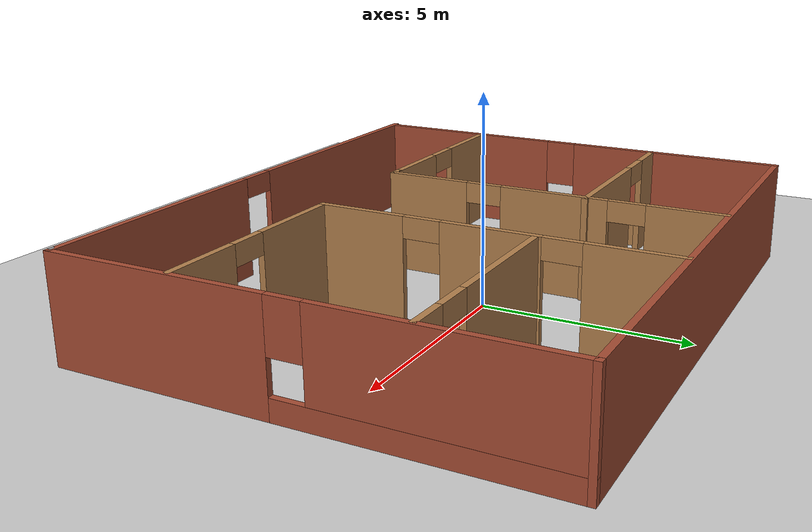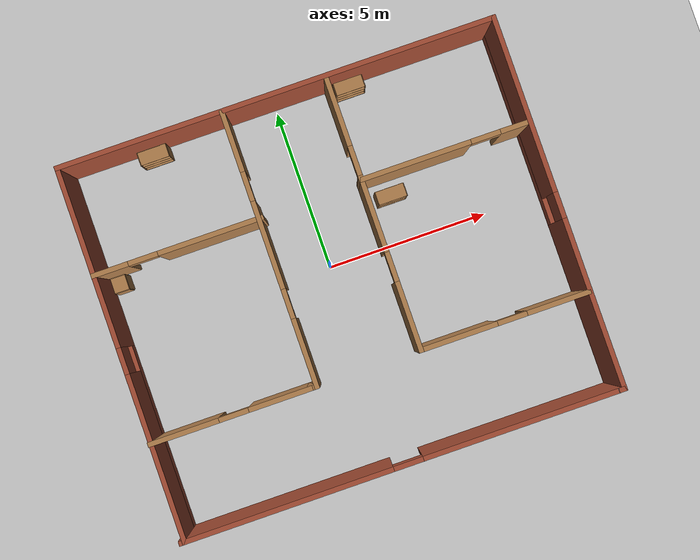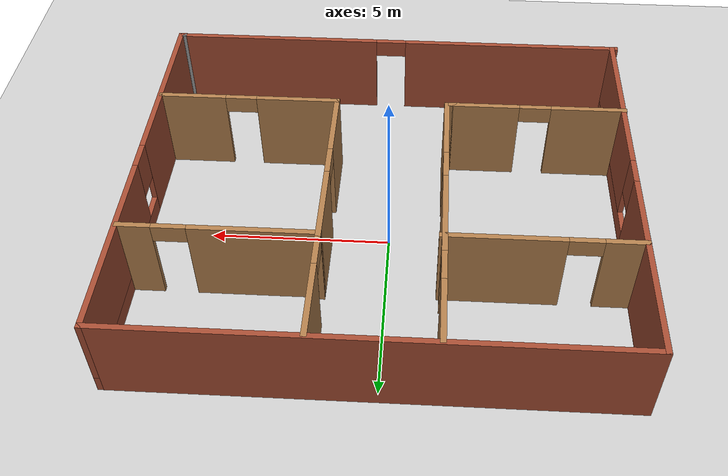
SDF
<sdf version="1.7">
 <world name="default">
  <light name="sun" type="directional">
   <pose>0 0 10 0 -0 0</pose>
   <diffuse>0.8 0.8 0.8 1</diffuse>
   <specular>0.2 0.2 0.2 1</specular>
   <attenuation>
    <range>1000</range>
    <constant>0.9</constant>
    <linear>0.01</linear>
    <quadratic>0.001</quadratic>
   </attenuation>
   <direction>-0.5 0.1 -0.9</direction>
   <spot><inner_angle>0</inner_angle><outer_angle>0</outer_angle><falloff>0</falloff></spot>
  </light>
  <model name="ground_plane">
   <static>1</static>
   <link name="link">
    <collision name="collision">
     <geometry><plane><normal>0 0 1</normal><size>100 100</size></plane></geometry>
     <surface>
      <contact><collide_bitmask>65535</collide_bitmask></contact>
      <friction><ode><mu>100</mu><mu2>50</mu2></ode></friction>
     </surface>
    </collision>
    <visual name="visual">
     <cast_shadows>0</cast_shadows>
     <geometry><plane><normal>0 0 1</normal><size>100 100</size></plane></geometry>
     <material>
      <script><uri>file://media/materials/scripts/gazebo.material</uri><name>Gazebo/Grey</name></script>
     </material>
    </visual>
   </link>
  </model>
  <gravity>0 0 -9.8</gravity>
  <magnetic_field>6e-06 2.3e-05 -4.2e-05</magnetic_field>
  <atmosphere type="adiabatic"/>
  <physics type="ode">
   <max_step_size>0.001</max_step_size>
   <real_time_factor>1</real_time_factor>
   <real_time_update_rate>1000</real_time_update_rate>
  </physics>
  <scene><ambient>0.4 0.4 0.4 1</ambient><background>0.7 0.7 0.7 1</background><shadows>1</shadows></scene>
  <audio><device>default</device></audio>
  <spherical_coordinates>
   <surface_model>EARTH_WGS84</surface_model>
   <latitude_deg>0</latitude_deg>
   <longitude_deg>0</longitude_deg>
   <elevation>0</elevation>
   <heading_deg>0</heading_deg>
  </spherical_coordinates>
  <model name="my_floor">
   <pose>0.09617 -0.473883 0 0 -0 0</pose>
   <link name="Wall_0">
    <pose>-0.05 -5.675 0 0 -0 0</pose>
    <visual name="Wall_0_Visual_0">
     <pose>-3.49359 0 1.25 0 -0 0</pose>
     <geometry><box><size>6.51281 0.15 2.5</size></box></geometry>
     <material>
      <script><uri>file://media/materials/scripts/gazebo.material</uri><name>Gazebo/Bricks</name></script>
      <ambient>1 1 1 1</ambient>
     </material>
     <meta><layer>0</layer></meta>
    </visual>
    <collision name="Wall_0_Collision_0">
     <geometry><box><size>6.51281 0.15 2.5</size></box></geometry>
     <pose>-3.49359 0 1.25 0 -0 0</pose>
    </collision>
    <visual name="Wall_0_Visual_1">
     <pose>3.70641 0 1.25 0 -0 0</pose>
     <geometry><box><size>6.08719 0.15 2.5</size></box></geometry>
     <material>
      <script><uri>file://media/materials/scripts/gazebo.material</uri><name>Gazebo/Bricks</name></script>
      <ambient>1 1 1 1</ambient>
     </material>
     <meta><layer>0</layer></meta>
    </visual>
    <collision name="Wall_0_Collision_1">
     <geometry><box><size>6.08719 0.15 2.5</size></box></geometry>
     <pose>3.70641 0 1.25 0 -0 0</pose>
    </collision>
    <visual name="Wall_0_Visual_2">
     <pose>0.212813 0 2.25 0 -0 0</pose>
     <geometry><box><size>0.9 0.15 0.5</size></box></geometry>
     <material>
      <script><uri>file://media/materials/scripts/gazebo.material</uri><name>Gazebo/Bricks</name></script>
      <ambient>1 1 1 1</ambient>
     </material>
     <meta><layer>0</layer></meta>
    </visual>
    <collision name="Wall_0_Collision_2">
     <geometry><box><size>0.9 0.15 0.5</size></box></geometry>
     <pose>0.212813 0 2.25 0 -0 0</pose>
    </collision>
   </link>
   <link name="Wall_10">
    <collision name="Wall_10_Collision">
     <geometry><box><size>0.25 0.15 2.5</size></box></geometry>
     <pose>0 0 1.25 0 -0 0</pose>
    </collision>
    <visual name="Wall_10_Visual">
     <pose>0 0 1.25 0 -0 0</pose>
     <geometry><box><size>0.25 0.15 2.5</size></box></geometry>
     <material>
      <script><uri>file://media/materials/scripts/gazebo.material</uri><name>Gazebo/Wood</name></script>
      <ambient>1 1 1 1</ambient>
     </material>
     <meta><layer>0</layer></meta>
    </visual>
    <pose>-1.6497 -2.71691 0 0 -0 0</pose>
   </link>
   <link name="Wall_11">
    <pose>-1.5997 1.45809 0 0 -0 1.5708</pose>
    <visual name="Wall_11_Visual_0">
     <pose>-3.18399 0 1.25 0 -0 0</pose>
     <geometry><box><size>2.13201 0.15 2.5</size></box></geometry>
     <material>
      <script><uri>file://media/materials/scripts/gazebo.material</uri><name>Gazebo/Wood</name></script>
      <ambient>1 1 1 1</ambient>
     </material>
     <meta><layer>0</layer></meta>
    </visual>
    <collision name="Wall_11_Collision_0">
     <geometry><box><size>2.13201 0.15 2.5</size></box></geometry>
     <pose>-3.18399 0 1.25 0 -0 0</pose>
    </collision>
    <visual name="Wall_11_Visual_1">
     <pose>0.121543 0 1.25 0 -0 0</pose>
     <geometry><box><size>2.67906 0.15 2.5</size></box></geometry>
     <material>
      <script><uri>file://media/materials/scripts/gazebo.material</uri><name>Gazebo/Wood</name></script>
      <ambient>1 1 1 1</ambient>
     </material>
     <meta><layer>0</layer></meta>
    </visual>
    <collision name="Wall_11_Collision_1">
     <geometry><box><size>2.67906 0.15 2.5</size></box></geometry>
     <pose>0.121543 0 1.25 0 -0 0</pose>
    </collision>
    <visual name="Wall_11_Visual_2">
     <pose>3.30554 0 1.25 0 -0 0</pose>
     <geometry><box><size>1.88893 0.15 2.5</size></box></geometry>
     <material>
      <script><uri>file://media/materials/scripts/gazebo.material</uri><name>Gazebo/Wood</name></script>
      <ambient>1 1 1 1</ambient>
     </material>
     <meta><layer>0</layer></meta>
    </visual>
    <collision name="Wall_11_Collision_2">
     <geometry><box><size>1.88893 0.15 2.5</size></box></geometry>
     <pose>3.30554 0 1.25 0 -0 0</pose>
    </collision>
    <visual name="Wall_11_Visual_3">
     <pose>-1.66799 0 2.25 0 -0 0</pose>
     <geometry><box><size>0.9 0.15 0.5</size></box></geometry>
     <material>
      <script><uri>file://media/materials/scripts/gazebo.material</uri><name>Gazebo/Wood</name></script>
      <ambient>1 1 1 1</ambient>
     </material>
     <meta><layer>0</layer></meta>
    </visual>
    <collision name="Wall_11_Collision_3">
     <geometry><box><size>0.9 0.15 0.5</size></box></geometry>
     <pose>-1.66799 0 2.25 0 -0 0</pose>
    </collision>
    <visual name="Wall_11_Visual_4">
     <pose>1.91107 0 2.25 0 -0 0</pose>
     <geometry><box><size>0.9 0.15 0.5</size></box></geometry>
     <material>
      <script><uri>file://media/materials/scripts/gazebo.material</uri><name>Gazebo/Wood</name></script>
      <ambient>1 1 1 1</ambient>
     </material>
     <meta><layer>0</layer></meta>
    </visual>
    <collision name="Wall_11_Collision_4">
     <geometry><box><size>0.9 0.15 0.5</size></box></geometry>
     <pose>1.91107 0 2.25 0 -0 0</pose>
    </collision>
   </link>
   <link name="Wall_13">
    <pose>1.56996 1.45783 0 0 -0 -1.5708</pose>
    <visual name="Wall_13_Visual_0">
     <pose>-3.15271 0 1.25 0 -0 0</pose>
     <geometry><box><size>2.19458 0.15 2.5</size></box></geometry>
     <material>
      <script><uri>file://media/materials/scripts/gazebo.material</uri><name>Gazebo/Wood</name></script>
      <ambient>1 1 1 1</ambient>
     </material>
     <meta><layer>0</layer></meta>
    </visual>
    <collision name="Wall_13_Collision_0">
     <geometry><box><size>2.19458 0.15 2.5</size></box></geometry>
     <pose>-3.15271 0 1.25 0 -0 0</pose>
    </collision>
    <visual name="Wall_13_Visual_1">
     <pose>0.015861 0 1.25 0 -0 0</pose>
     <geometry><box><size>2.34256 0.15 2.5</size></box></geometry>
     <material>
      <script><uri>file://media/materials/scripts/gazebo.material</uri><name>Gazebo/Wood</name></script>
      <ambient>1 1 1 1</ambient>
     </material>
     <meta><layer>0</layer></meta>
    </visual>
    <collision name="Wall_13_Collision_1">
     <geometry><box><size>2.34256 0.15 2.5</size></box></geometry>
     <pose>0.015861 0 1.25 0 -0 0</pose>
    </collision>
    <visual name="Wall_13_Visual_2">
     <pose>3.16857 0 1.25 0 -0 0</pose>
     <geometry><box><size>2.16286 0.15 2.5</size></box></geometry>
     <material>
      <script><uri>file://media/materials/scripts/gazebo.material</uri><name>Gazebo/Wood</name></script>
      <ambient>1 1 1 1</ambient>
     </material>
     <meta><layer>0</layer></meta>
    </visual>
    <collision name="Wall_13_Collision_2">
     <geometry><box><size>2.16286 0.15 2.5</size></box></geometry>
     <pose>3.16857 0 1.25 0 -0 0</pose>
    </collision>
    <visual name="Wall_13_Visual_3">
     <pose>-1.60542 0 2.25 0 -0 0</pose>
     <geometry><box><size>0.9 0.15 0.5</size></box></geometry>
     <material>
      <script><uri>file://media/materials/scripts/gazebo.material</uri><name>Gazebo/Wood</name></script>
      <ambient>1 1 1 1</ambient>
     </material>
     <meta><layer>0</layer></meta>
    </visual>
    <collision name="Wall_13_Collision_3">
     <geometry><box><size>0.9 0.15 0.5</size></box></geometry>
     <pose>-1.60542 0 2.25 0 -0 0</pose>
    </collision>
    <visual name="Wall_13_Visual_4">
     <pose>1.63714 0 2.25 0 -0 0</pose>
     <geometry><box><size>0.9 0.15 0.5</size></box></geometry>
     <material>
      <script><uri>file://media/materials/scripts/gazebo.material</uri><name>Gazebo/Wood</name></script>
      <ambient>1 1 1 1</ambient>
     </material>
     <meta><layer>0</layer></meta>
    </visual>
    <collision name="Wall_13_Collision_4">
     <geometry><box><size>0.9 0.15 0.5</size></box></geometry>
     <pose>1.63714 0 2.25 0 -0 0</pose>
    </collision>
   </link>
   <link name="Wall_14">
    <pose>4.11996 -2.71717 0 0 -0 0</pose>
    <visual name="Wall_14_Visual_0">
     <pose>-1.42064 0 1.25 0 -0 0</pose>
     <geometry><box><size>2.40871 0.15 2.5</size></box></geometry>
     <material>
      <script><uri>file://media/materials/scripts/gazebo.material</uri><name>Gazebo/Wood</name></script>
      <ambient>1 1 1 1</ambient>
     </material>
     <meta><layer>0</layer></meta>
    </visual>
    <collision name="Wall_14_Collision_0">
     <geometry><box><size>2.40871 0.15 2.5</size></box></geometry>
     <pose>-1.42064 0 1.25 0 -0 0</pose>
    </collision>
    <visual name="Wall_14_Visual_1">
     <pose>1.65436 0 1.25 0 -0 0</pose>
     <geometry><box><size>1.94129 0.15 2.5</size></box></geometry>
     <material>
      <script><uri>file://media/materials/scripts/gazebo.material</uri><name>Gazebo/Wood</name></script>
      <ambient>1 1 1 1</ambient>
     </material>
     <meta><layer>0</layer></meta>
    </visual>
    <collision name="Wall_14_Collision_1">
     <geometry><box><size>1.94129 0.15 2.5</size></box></geometry>
     <pose>1.65436 0 1.25 0 -0 0</pose>
    </collision>
    <visual name="Wall_14_Visual_2">
     <pose>0.233711 0 2.25 0 -0 0</pose>
     <geometry><box><size>0.9 0.15 0.5</size></box></geometry>
     <material>
      <script><uri>file://media/materials/scripts/gazebo.material</uri><name>Gazebo/Wood</name></script>
      <ambient>1 1 1 1</ambient>
     </material>
     <meta><layer>0</layer></meta>
    </visual>
    <collision name="Wall_14_Collision_2">
     <geometry><box><size>0.9 0.15 0.5</size></box></geometry>
     <pose>0.233711 0 2.25 0 -0 0</pose>
    </collision>
   </link>
   <link name="Wall_16">
    <pose>-4.07822 2.39027 0 0 -0 0</pose>
    <visual name="Wall_16_Visual_0">
     <pose>-2.06304 0 1.25 0 -0 0</pose>
     <geometry><box><size>1.12392 0.15 2.5</size></box></geometry>
     <material>
      <script><uri>file://media/materials/scripts/gazebo.material</uri><name>Gazebo/Wood</name></script>
      <ambient>1 1 1 1</ambient>
     </material>
     <meta><layer>0</layer></meta>
    </visual>
    <collision name="Wall_16_Collision_0">
     <geometry><box><size>1.12392 0.15 2.5</size></box></geometry>
     <pose>-2.06304 0 1.25 0 -0 0</pose>
    </collision>
    <visual name="Wall_16_Visual_1">
     <pose>1.01196 0 1.25 0 -0 0</pose>
     <geometry><box><size>3.22608 0.15 2.5</size></box></geometry>
     <material>
      <script><uri>file://media/materials/scripts/gazebo.material</uri><name>Gazebo/Wood</name></script>
      <ambient>1 1 1 1</ambient>
     </material>
     <meta><layer>0</layer></meta>
    </visual>
    <collision name="Wall_16_Collision_1">
     <geometry><box><size>3.22608 0.15 2.5</size></box></geometry>
     <pose>1.01196 0 1.25 0 -0 0</pose>
    </collision>
    <visual name="Wall_16_Visual_2">
     <pose>-1.05108 0 2.25 0 -0 0</pose>
     <geometry><box><size>0.9 0.15 0.5</size></box></geometry>
     <material>
      <script><uri>file://media/materials/scripts/gazebo.material</uri><name>Gazebo/Wood</name></script>
      <ambient>1 1 1 1</ambient>
     </material>
     <meta><layer>0</layer></meta>
    </visual>
    <collision name="Wall_16_Collision_2">
     <geometry><box><size>0.9 0.15 0.5</size></box></geometry>
     <pose>-1.05108 0 2.25 0 -0 0</pose>
    </collision>
   </link>
   <link name="Wall_18">
    <pose>4.11996 2.48204 0 0 -0 0</pose>
    <visual name="Wall_18_Visual_0">
     <pose>-0.915906 0 1.25 0 -0 0</pose>
     <geometry><box><size>3.41819 0.15 2.5</size></box></geometry>
     <material>
      <script><uri>file://media/materials/scripts/gazebo.material</uri><name>Gazebo/Wood</name></script>
      <ambient>1 1 1 1</ambient>
     </material>
     <meta><layer>0</layer></meta>
    </visual>
    <collision name="Wall_18_Collision_0">
     <geometry><box><size>3.41819 0.15 2.5</size></box></geometry>
     <pose>-0.915906 0 1.25 0 -0 0</pose>
    </collision>
    <visual name="Wall_18_Visual_1">
     <pose>2.15909 0 1.25 0 -0 0</pose>
     <geometry><box><size>0.931812 0.15 2.5</size></box></geometry>
     <material>
      <script><uri>file://media/materials/scripts/gazebo.material</uri><name>Gazebo/Wood</name></script>
      <ambient>1 1 1 1</ambient>
     </material>
     <meta><layer>0</layer></meta>
    </visual>
    <collision name="Wall_18_Collision_1">
     <geometry><box><size>0.931812 0.15 2.5</size></box></geometry>
     <pose>2.15909 0 1.25 0 -0 0</pose>
    </collision>
    <visual name="Wall_18_Visual_2">
     <pose>1.24319 0 2.25 0 -0 0</pose>
     <geometry><box><size>0.9 0.15 0.5</size></box></geometry>
     <material>
      <script><uri>file://media/materials/scripts/gazebo.material</uri><name>Gazebo/Wood</name></script>
      <ambient>1 1 1 1</ambient>
     </material>
     <meta><layer>0</layer></meta>
    </visual>
    <collision name="Wall_18_Collision_2">
     <geometry><box><size>0.9 0.15 0.5</size></box></geometry>
     <pose>1.24319 0 2.25 0 -0 0</pose>
    </collision>
   </link>
   <link name="Wall_2">
    <collision name="Wall_2_Collision">
     <geometry><box><size>0.15 0.15 2.5</size></box></geometry>
     <pose>0 0 1.25 0 -0 0</pose>
    </collision>
    <visual name="Wall_2_Visual">
     <pose>0 0 1.25 0 -0 0</pose>
     <geometry><box><size>0.15 0.15 2.5</size></box></geometry>
     <material>
      <script><uri>file://media/materials/scripts/gazebo.material</uri><name>Gazebo/Grey</name></script>
      <ambient>1 1 1 1</ambient>
     </material>
     <meta><layer>0</layer></meta>
    </visual>
    <pose>6.625 -5.675 0 0 -0 0</pose>
   </link>
   <link name="Wall_3">
    <collision name="Wall_3_Collision">
     <geometry><box><size>0.25 0.15 2.5</size></box></geometry>
     <pose>0 0 1.25 0 -0 0</pose>
    </collision>
    <visual name="Wall_3_Visual">
     <pose>0 0 1.25 0 -0 0</pose>
     <geometry><box><size>0.25 0.15 2.5</size></box></geometry>
     <material>
      <script><uri>file://media/materials/scripts/gazebo.material</uri><name>Gazebo/Bricks</name></script>
      <ambient>1 1 1 1</ambient>
     </material>
     <meta><layer>0</layer></meta>
    </visual>
    <pose>6.675 -5.675 0 0 -0 0</pose>
   </link>
   <link name="Wall_4">
    <pose>6.725 0 0 0 -0 1.5708</pose>
    <visual name="Wall_4_Visual_0">
     <pose>-3.11877 0 1.25 0 -0 0</pose>
     <geometry><box><size>5.26246 0.15 2.5</size></box></geometry>
     <material>
      <script><uri>file://media/materials/scripts/gazebo.material</uri><name>Gazebo/Bricks</name></script>
      <ambient>1 1 1 1</ambient>
     </material>
     <meta><layer>0</layer></meta>
    </visual>
    <collision name="Wall_4_Collision_0">
     <geometry><box><size>5.26246 0.15 2.5</size></box></geometry>
     <pose>-3.11877 0 1.25 0 -0 0</pose>
    </collision>
    <visual name="Wall_4_Visual_1">
     <pose>2.63123 0 0.25 0 -0 0</pose>
     <geometry><box><size>6.23754 0.15 0.5</size></box></geometry>
     <material>
      <script><uri>file://media/materials/scripts/gazebo.material</uri><name>Gazebo/Bricks</name></script>
      <ambient>1 1 1 1</ambient>
     </material>
     <meta><layer>0</layer></meta>
    </visual>
    <collision name="Wall_4_Collision_1">
     <geometry><box><size>6.23754 0.15 0.5</size></box></geometry>
     <pose>2.63123 0 0.25 0 -0 0</pose>
    </collision>
    <visual name="Wall_4_Visual_2">
     <pose>3.03123 0 1.5 0 -0 0</pose>
     <geometry><box><size>5.43754 0.15 2</size></box></geometry>
     <material>
      <script><uri>file://media/materials/scripts/gazebo.material</uri><name>Gazebo/Bricks</name></script>
      <ambient>1 1 1 1</ambient>
     </material>
     <meta><layer>0</layer></meta>
    </visual>
    <collision name="Wall_4_Collision_2">
     <geometry><box><size>5.43754 0.15 2</size></box></geometry>
     <pose>3.03123 0 1.5 0 -0 0</pose>
    </collision>
    <visual name="Wall_4_Visual_3">
     <pose>-0.087538 0 1.9 0 -0 0</pose>
     <geometry><box><size>0.8 0.15 1.2</size></box></geometry>
     <material>
      <script><uri>file://media/materials/scripts/gazebo.material</uri><name>Gazebo/Bricks</name></script>
      <ambient>1 1 1 1</ambient>
     </material>
     <meta><layer>0</layer></meta>
    </visual>
    <collision name="Wall_4_Collision_3">
     <geometry><box><size>0.8 0.15 1.2</size></box></geometry>
     <pose>-0.087538 0 1.9 0 -0 0</pose>
    </collision>
   </link>
   <link name="Wall_5">
    <collision name="Wall_5_Collision">
     <geometry><box><size>13.5 0.15 2.5</size></box></geometry>
     <pose>0 0 1.25 0 -0 0</pose>
    </collision>
    <visual name="Wall_5_Visual">
     <pose>0 0 1.25 0 -0 0</pose>
     <geometry><box><size>13.5 0.15 2.5</size></box></geometry>
     <material>
      <script><uri>file://media/materials/scripts/gazebo.material</uri><name>Gazebo/Bricks</name></script>
      <ambient>1 1 1 1</ambient>
     </material>
     <meta><layer>0</layer></meta>
    </visual>
    <pose>0.05 5.675 0 0 -0 3.14159</pose>
   </link>
   <link name="Wall_6">
    <pose>-6.625 0 0 0 -0 -1.5708</pose>
    <visual name="Wall_6_Visual_0">
     <pose>-2.97005 0 1.25 0 -0 0</pose>
     <geometry><box><size>5.5599 0.15 2.5</size></box></geometry>
     <material>
      <script><uri>file://media/materials/scripts/gazebo.material</uri><name>Gazebo/Bricks</name></script>
      <ambient>1 1 1 1</ambient>
     </material>
     <meta><layer>0</layer></meta>
    </visual>
    <collision name="Wall_6_Collision_0">
     <geometry><box><size>5.5599 0.15 2.5</size></box></geometry>
     <pose>-2.97005 0 1.25 0 -0 0</pose>
    </collision>
    <visual name="Wall_6_Visual_1">
     <pose>2.77995 0 0.25 0 -0 0</pose>
     <geometry><box><size>5.9401 0.15 0.5</size></box></geometry>
     <material>
      <script><uri>file://media/materials/scripts/gazebo.material</uri><name>Gazebo/Bricks</name></script>
      <ambient>1 1 1 1</ambient>
     </material>
     <meta><layer>0</layer></meta>
    </visual>
    <collision name="Wall_6_Collision_1">
     <geometry><box><size>5.9401 0.15 0.5</size></box></geometry>
     <pose>2.77995 0 0.25 0 -0 0</pose>
    </collision>
    <visual name="Wall_6_Visual_2">
     <pose>3.17995 0 1.5 0 -0 0</pose>
     <geometry><box><size>5.1401 0.15 2</size></box></geometry>
     <material>
      <script><uri>file://media/materials/scripts/gazebo.material</uri><name>Gazebo/Bricks</name></script>
      <ambient>1 1 1 1</ambient>
     </material>
     <meta><layer>0</layer></meta>
    </visual>
    <collision name="Wall_6_Collision_2">
     <geometry><box><size>5.1401 0.15 2</size></box></geometry>
     <pose>3.17995 0 1.5 0 -0 0</pose>
    </collision>
    <visual name="Wall_6_Visual_3">
     <pose>0.209899 0 1.9 0 -0 0</pose>
     <geometry><box><size>0.8 0.15 1.2</size></box></geometry>
     <material>
      <script><uri>file://media/materials/scripts/gazebo.material</uri><name>Gazebo/Bricks</name></script>
      <ambient>1 1 1 1</ambient>
     </material>
     <meta><layer>0</layer></meta>
    </visual>
    <collision name="Wall_6_Collision_3">
     <geometry><box><size>0.8 0.15 1.2</size></box></geometry>
     <pose>0.209899 0 1.9 0 -0 0</pose>
    </collision>
   </link>
   <link name="Wall_8">
    <pose>-4.2247 -2.71691 0 0 -0 0</pose>
    <visual name="Wall_8_Visual_0">
     <pose>-1.42256 0 1.25 0 -0 0</pose>
     <geometry><box><size>2.15488 0.15 2.5</size></box></geometry>
     <material>
      <script><uri>file://media/materials/scripts/gazebo.material</uri><name>Gazebo/Wood</name></script>
      <ambient>1 1 1 1</ambient>
     </material>
     <meta><layer>0</layer></meta>
    </visual>
    <collision name="Wall_8_Collision_0">
     <geometry><box><size>2.15488 0.15 2.5</size></box></geometry>
     <pose>-1.42256 0 1.25 0 -0 0</pose>
    </collision>
    <visual name="Wall_8_Visual_1">
     <pose>1.52744 0 1.25 0 -0 0</pose>
     <geometry><box><size>1.94512 0.15 2.5</size></box></geometry>
     <material>
      <script><uri>file://media/materials/scripts/gazebo.material</uri><name>Gazebo/Wood</name></script>
      <ambient>1 1 1 1</ambient>
     </material>
     <meta><layer>0</layer></meta>
    </visual>
    <collision name="Wall_8_Collision_1">
     <geometry><box><size>1.94512 0.15 2.5</size></box></geometry>
     <pose>1.52744 0 1.25 0 -0 0</pose>
    </collision>
    <visual name="Wall_8_Visual_2">
     <pose>0.104881 0 2.25 0 -0 0</pose>
     <geometry><box><size>0.9 0.15 0.5</size></box></geometry>
     <material>
      <script><uri>file://media/materials/scripts/gazebo.material</uri><name>Gazebo/Wood</name></script>
      <ambient>1 1 1 1</ambient>
     </material>
     <meta><layer>0</layer></meta>
    </visual>
    <collision name="Wall_8_Collision_2">
     <geometry><box><size>0.9 0.15 0.5</size></box></geometry>
     <pose>0.104881 0 2.25 0 -0 0</pose>
    </collision>
   </link>
   <link name="Wall_9">
    <collision name="Wall_9_Collision">
     <geometry><box><size>0.25 0.15 2.5</size></box></geometry>
     <pose>0 0 1.25 0 -0 0</pose>
    </collision>
    <visual name="Wall_9_Visual">
     <pose>0 0 1.25 0 -0 0</pose>
     <geometry><box><size>0.25 0.15 2.5</size></box></geometry>
     <material>
      <script><uri>file://media/materials/scripts/gazebo.material</uri><name>Gazebo/Wood</name></script>
      <ambient>1 1 1 1</ambient>
     </material>
     <meta><layer>0</layer></meta>
    </visual>
    <pose>-1.7497 -2.71691 0 0 -0 0</pose>
   </link>
   <static>1</static>
  </model>
  <model name="cabinet">
   <static>1</static>
   <link name="cabinet_bottom_plate">
    <inertial>
     <pose>0 0 -1 0 -0 0</pose>
     <inertia><ixx>2.05</ixx><ixy>0</ixy><ixz>0</ixz><iyy>2.05</iyy><iyz>0</iyz><izz>2.05</izz></inertia>
     <mass>25</mass>
    </inertial>
    <collision name="cabinet_bottom_plate_geom">
     <pose>0 0 0.01 0 -0 0</pose>
     <geometry><box><size>0.45 0.45 0.02</size></box></geometry>
    </collision>
    <visual name="cabinet_bottom_plate_geom_visual">
     <pose>0 0 0.01 0 -0 0</pose>
     <geometry><box><size>0.45 0.45 0.02</size></box></geometry>
     <material>
      <script><uri>file://media/materials/scripts/gazebo.material</uri><name>Gazebo/Wood</name></script>
     </material>
    </visual>
    <collision name="cabinet_bottom_plate_geom_cabinet_back_plate">
     <pose>0.235 0 0.51 0 -0 0</pose>
     <geometry><box><size>0.02 0.45 1.02</size></box></geometry>
    </collision>
    <visual name="cabinet_bottom_plate_geom_cabinet_back_plate_visual">
     <pose>0.235 0 0.51 0 -0 0</pose>
     <geometry><box><size>0.02 0.45 1.02</size></box></geometry>
     <material>
      <script><uri>file://media/materials/scripts/gazebo.material</uri><name>Gazebo/Wood</name></script>
     </material>
    </visual>
    <collision name="cabinet_bottom_plate_geom_cabinet_left_plate">
     <pose>0 0.235 0.51 0 -0 0</pose>
     <geometry><box><size>0.45 0.02 1.02</size></box></geometry>
    </collision>
    <visual name="cabinet_bottom_plate_geom_cabinet_left_plate_visual">
     <pose>0 0.235 0.51 0 -0 0</pose>
     <geometry><box><size>0.45 0.02 1.02</size></box></geometry>
     <material>
      <script><uri>file://media/materials/scripts/gazebo.material</uri><name>Gazebo/Wood</name></script>
     </material>
    </visual>
    <collision name="cabinet_bottom_plate_geom_cabinet_middle_plate">
     <pose>0 0 0.51 0 -0 0</pose>
     <geometry><box><size>0.45 0.45 0.02</size></box></geometry>
    </collision>
    <visual name="cabinet_bottom_plate_geom_cabinet_middle_plate_visual">
     <pose>0 0 0.51 0 -0 0</pose>
     <geometry><box><size>0.45 0.45 0.02</size></box></geometry>
     <material>
      <script><uri>file://media/materials/scripts/gazebo.material</uri><name>Gazebo/Wood</name></script>
     </material>
    </visual>
    <collision name="cabinet_bottom_plate_geom_cabinet_right_plate">
     <pose>0 -0.235 0.51 0 -0 0</pose>
     <geometry><box><size>0.45 0.02 1.02</size></box></geometry>
    </collision>
    <visual name="cabinet_bottom_plate_geom_cabinet_right_plate_visual">
     <pose>0 -0.235 0.51 0 -0 0</pose>
     <geometry><box><size>0.45 0.02 1.02</size></box></geometry>
     <material>
      <script><uri>file://media/materials/scripts/gazebo.material</uri><name>Gazebo/Wood</name></script>
     </material>
    </visual>
    <collision name="cabinet_bottom_plate_geom_cabinet_top_plate">
     <pose>0 0 1.01 0 -0 0</pose>
     <geometry><box><size>0.45 0.45 0.02</size></box></geometry>
    </collision>
    <visual name="cabinet_bottom_plate_geom_cabinet_top_plate_visual">
     <pose>0 0 1.01 0 -0 0</pose>
     <geometry><box><size>0.45 0.45 0.02</size></box></geometry>
     <material>
      <script><uri>file://media/materials/scripts/gazebo.material</uri><name>Gazebo/Wood</name></script>
     </material>
    </visual>
   </link>
   <pose>-6.12282 1.55892 0 0 -0 0</pose>
  </model>
  <model name="bookshelf">
   <static>1</static>
   <link name="link">
    <inertial><mass>1</mass></inertial>
    <collision name="back">
     <pose>0 0.005 0.6 0 -0 0</pose>
     <geometry><box><size>0.9 0.01 1.2</size></box></geometry>
    </collision>
    <visual name="visual1">
     <pose>0 0.005 0.6 0 -0 0</pose>
     <geometry><box><size>0.9 0.01 1.2</size></box></geometry>
     <material>
      <script><uri>file://media/materials/scripts/gazebo.material</uri><name>Gazebo/Wood</name></script>
     </material>
    </visual>
    <collision name="left_side">
     <pose>0.45 -0.195 0.6 0 -0 0</pose>
     <geometry><box><size>0.02 0.4 1.2</size></box></geometry>
    </collision>
    <visual name="visual2">
     <pose>0.45 -0.195 0.6 0 -0 0</pose>
     <geometry><box><size>0.02 0.4 1.2</size></box></geometry>
     <material>
      <script><uri>file://media/materials/scripts/gazebo.material</uri><name>Gazebo/Wood</name></script>
     </material>
    </visual>
    <collision name="right_side">
     <pose>-0.45 -0.195 0.6 0 -0 0</pose>
     <geometry><box><size>0.02 0.4 1.2</size></box></geometry>
    </collision>
    <visual name="visual3">
     <pose>-0.45 -0.195 0.6 0 -0 0</pose>
     <geometry><box><size>0.02 0.4 1.2</size></box></geometry>
     <material>
      <script><uri>file://media/materials/scripts/gazebo.material</uri><name>Gazebo/Wood</name></script>
     </material>
    </visual>
    <collision name="bottom">
     <pose>0 -0.195 0.03 0 -0 0</pose>
     <geometry><box><size>0.88 0.4 0.06</size></box></geometry>
    </collision>
    <visual name="visual4">
     <pose>0 -0.195 0.03 0 -0 0</pose>
     <geometry><box><size>0.88 0.4 0.06</size></box></geometry>
     <material>
      <script><uri>file://media/materials/scripts/gazebo.material</uri><name>Gazebo/Wood</name></script>
     </material>
    </visual>
    <collision name="top">
     <pose>0 -0.195 1.19 0 -0 0</pose>
     <geometry><box><size>0.88 0.4 0.02</size></box></geometry>
    </collision>
    <visual name="visual5">
     <pose>0 -0.195 1.19 0 -0 0</pose>
     <geometry><box><size>0.88 0.4 0.02</size></box></geometry>
     <material>
      <script><uri>file://media/materials/scripts/gazebo.material</uri><name>Gazebo/Wood</name></script>
     </material>
    </visual>
    <collision name="low_shelf">
     <pose>0 -0.195 0.43 0 -0 0</pose>
     <geometry><box><size>0.88 0.4 0.02</size></box></geometry>
    </collision>
    <visual name="visual6">
     <pose>0 -0.195 0.43 0 -0 0</pose>
     <geometry><box><size>0.88 0.4 0.02</size></box></geometry>
     <material>
      <script><uri>file://media/materials/scripts/gazebo.material</uri><name>Gazebo/Wood</name></script>
     </material>
    </visual>
    <collision name="high_shelf">
     <pose>0 -0.195 0.8 0 -0 0</pose>
     <geometry><box><size>0.88 0.4 0.02</size></box></geometry>
    </collision>
    <visual name="visual7">
     <pose>0 -0.195 0.8 0 -0 0</pose>
     <geometry><box><size>0.88 0.4 0.02</size></box></geometry>
     <material>
      <script><uri>file://media/materials/scripts/gazebo.material</uri><name>Gazebo/Wood</name></script>
     </material>
    </visual>
   </link>
   <pose>-3.90222 5.07606 0 0 -0 0</pose>
  </model>
  <model name="bookshelf_0">
   <static>1</static>
   <link name="link">
    <inertial><mass>1</mass></inertial>
    <collision name="back">
     <pose>0 0.005 0.6 0 -0 0</pose>
     <geometry><box><size>0.9 0.01 1.2</size></box></geometry>
    </collision>
    <visual name="visual1">
     <pose>0 0.005 0.6 0 -0 0</pose>
     <geometry><box><size>0.9 0.01 1.2</size></box></geometry>
     <material>
      <script><uri>file://media/materials/scripts/gazebo.material</uri><name>Gazebo/Wood</name></script>
     </material>
    </visual>
    <collision name="left_side">
     <pose>0.45 -0.195 0.6 0 -0 0</pose>
     <geometry><box><size>0.02 0.4 1.2</size></box></geometry>
    </collision>
    <visual name="visual2">
     <pose>0.45 -0.195 0.6 0 -0 0</pose>
     <geometry><box><size>0.02 0.4 1.2</size></box></geometry>
     <material>
      <script><uri>file://media/materials/scripts/gazebo.material</uri><name>Gazebo/Wood</name></script>
     </material>
    </visual>
    <collision name="right_side">
     <pose>-0.45 -0.195 0.6 0 -0 0</pose>
     <geometry><box><size>0.02 0.4 1.2</size></box></geometry>
    </collision>
    <visual name="visual3">
     <pose>-0.45 -0.195 0.6 0 -0 0</pose>
     <geometry><box><size>0.02 0.4 1.2</size></box></geometry>
     <material>
      <script><uri>file://media/materials/scripts/gazebo.material</uri><name>Gazebo/Wood</name></script>
     </material>
    </visual>
    <collision name="bottom">
     <pose>0 -0.195 0.03 0 -0 0</pose>
     <geometry><box><size>0.88 0.4 0.06</size></box></geometry>
    </collision>
    <visual name="visual4">
     <pose>0 -0.195 0.03 0 -0 0</pose>
     <geometry><box><size>0.88 0.4 0.06</size></box></geometry>
     <material>
      <script><uri>file://media/materials/scripts/gazebo.material</uri><name>Gazebo/Wood</name></script>
     </material>
    </visual>
    <collision name="top">
     <pose>0 -0.195 1.19 0 -0 0</pose>
     <geometry><box><size>0.88 0.4 0.02</size></box></geometry>
    </collision>
    <visual name="visual5">
     <pose>0 -0.195 1.19 0 -0 0</pose>
     <geometry><box><size>0.88 0.4 0.02</size></box></geometry>
     <material>
      <script><uri>file://media/materials/scripts/gazebo.material</uri><name>Gazebo/Wood</name></script>
     </material>
    </visual>
    <collision name="low_shelf">
     <pose>0 -0.195 0.43 0 -0 0</pose>
     <geometry><box><size>0.88 0.4 0.02</size></box></geometry>
    </collision>
    <visual name="visual6">
     <pose>0 -0.195 0.43 0 -0 0</pose>
     <geometry><box><size>0.88 0.4 0.02</size></box></geometry>
     <material>
      <script><uri>file://media/materials/scripts/gazebo.material</uri><name>Gazebo/Wood</name></script>
     </material>
    </visual>
    <collision name="high_shelf">
     <pose>0 -0.195 0.8 0 -0 0</pose>
     <geometry><box><size>0.88 0.4 0.02</size></box></geometry>
    </collision>
    <visual name="visual7">
     <pose>0 -0.195 0.8 0 -0 0</pose>
     <geometry><box><size>0.88 0.4 0.02</size></box></geometry>
     <material>
      <script><uri>file://media/materials/scripts/gazebo.material</uri><name>Gazebo/Wood</name></script>
     </material>
    </visual>
   </link>
   <pose>2.42002 1.634 0 0 -0 0</pose>
  </model>
  <model name="bookshelf_1">
   <static>1</static>
   <link name="link">
    <inertial><mass>1</mass></inertial>
    <collision name="back">
     <pose>0 0.005 0.6 0 -0 0</pose>
     <geometry><box><size>0.9 0.01 1.2</size></box></geometry>
    </collision>
    <visual name="visual1">
     <pose>0 0.005 0.6 0 -0 0</pose>
     <geometry><box><size>0.9 0.01 1.2</size></box></geometry>
     <material>
      <script><uri>file://media/materials/scripts/gazebo.material</uri><name>Gazebo/Wood</name></script>
     </material>
    </visual>
    <collision name="left_side">
     <pose>0.45 -0.195 0.6 0 -0 0</pose>
     <geometry><box><size>0.02 0.4 1.2</size></box></geometry>
    </collision>
    <visual name="visual2">
     <pose>0.45 -0.195 0.6 0 -0 0</pose>
     <geometry><box><size>0.02 0.4 1.2</size></box></geometry>
     <material>
      <script><uri>file://media/materials/scripts/gazebo.material</uri><name>Gazebo/Wood</name></script>
     </material>
    </visual>
    <collision name="right_side">
     <pose>-0.45 -0.195 0.6 0 -0 0</pose>
     <geometry><box><size>0.02 0.4 1.2</size></box></geometry>
    </collision>
    <visual name="visual3">
     <pose>-0.45 -0.195 0.6 0 -0 0</pose>
     <geometry><box><size>0.02 0.4 1.2</size></box></geometry>
     <material>
      <script><uri>file://media/materials/scripts/gazebo.material</uri><name>Gazebo/Wood</name></script>
     </material>
    </visual>
    <collision name="bottom">
     <pose>0 -0.195 0.03 0 -0 0</pose>
     <geometry><box><size>0.88 0.4 0.06</size></box></geometry>
    </collision>
    <visual name="visual4">
     <pose>0 -0.195 0.03 0 -0 0</pose>
     <geometry><box><size>0.88 0.4 0.06</size></box></geometry>
     <material>
      <script><uri>file://media/materials/scripts/gazebo.material</uri><name>Gazebo/Wood</name></script>
     </material>
    </visual>
    <collision name="top">
     <pose>0 -0.195 1.19 0 -0 0</pose>
     <geometry><box><size>0.88 0.4 0.02</size></box></geometry>
    </collision>
    <visual name="visual5">
     <pose>0 -0.195 1.19 0 -0 0</pose>
     <geometry><box><size>0.88 0.4 0.02</size></box></geometry>
     <material>
      <script><uri>file://media/materials/scripts/gazebo.material</uri><name>Gazebo/Wood</name></script>
     </material>
    </visual>
    <collision name="low_shelf">
     <pose>0 -0.195 0.43 0 -0 0</pose>
     <geometry><box><size>0.88 0.4 0.02</size></box></geometry>
    </collision>
    <visual name="visual6">
     <pose>0 -0.195 0.43 0 -0 0</pose>
     <geometry><box><size>0.88 0.4 0.02</size></box></geometry>
     <material>
      <script><uri>file://media/materials/scripts/gazebo.material</uri><name>Gazebo/Wood</name></script>
     </material>
    </visual>
    <collision name="high_shelf">
     <pose>0 -0.195 0.8 0 -0 0</pose>
     <geometry><box><size>0.88 0.4 0.02</size></box></geometry>
    </collision>
    <visual name="visual7">
     <pose>0 -0.195 0.8 0 -0 0</pose>
     <geometry><box><size>0.88 0.4 0.02</size></box></geometry>
     <material>
      <script><uri>file://media/materials/scripts/gazebo.material</uri><name>Gazebo/Wood</name></script>
     </material>
    </visual>
   </link>
   <pose>2.3048 5.13927 0 0 -0 0</pose>
  </model>
 </world>
</sdf>
